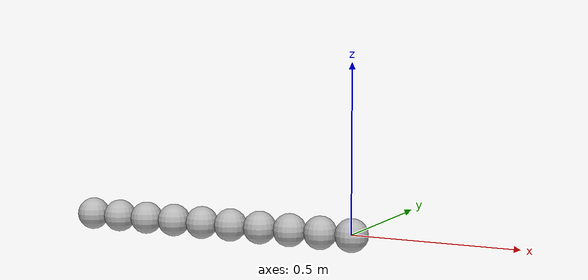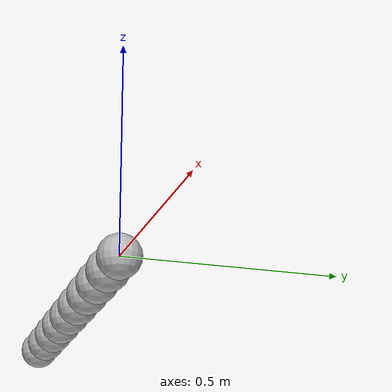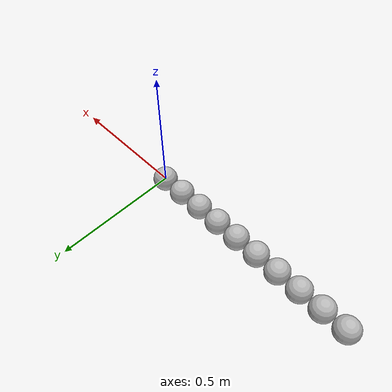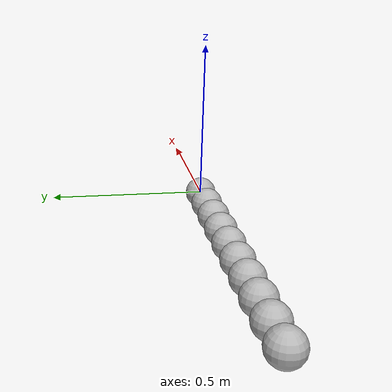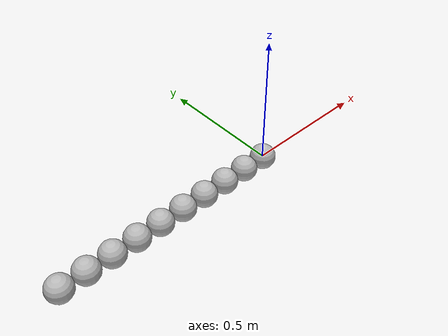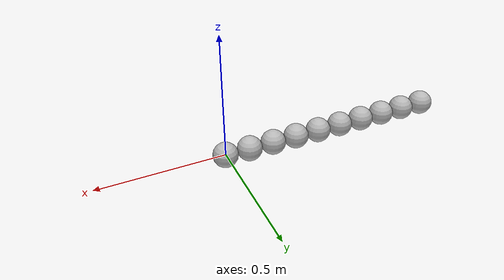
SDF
<?xml version='1.0' ?>
<!-- pybulletで使うときはballをsphericalをする-->
<!-- https://pybullet.org/Bullet/phpBB3/viewtopic.php?t=12687 -->
<!--  link同士の最短距離は0 -->
<sdf version="1.6">
  <model name="string_object">

    <self_collide>1</self_collide>

    <link name="link1">
      <collision name="collision1">
        <geometry>
          <sphere>
            <radius>0.05</radius>
          </sphere>
        </geometry>
      </collision>
      <visual name="visual1">
        <geometry>
          <sphere>
            <radius>0.05</radius>
          </sphere>
        </geometry>
      </visual>
      <inertial>
        <mass>0.1</mass>
        <inertia>
          <ixx>1.0</ixx>
          <ixy>0</ixy>
          <ixz>0</ixz>
          <iyy>1.0</iyy>
          <iyz>0</iyz>
          <izz>1.0</izz>
        </inertia>
      </inertial>
      <pose frame=''>0 0 0 0 0 0</pose>
    </link>

    <joint name="joint1" type="spherical">
      <parent>link1</parent>
      <child>link2</child>
      <pose frame=''>0.05 0 0 0 0 0</pose>
    </joint>

    <link name="link2">
      <collision name="collision2">
        <geometry>
          <sphere>
            <radius>0.05</radius>
          </sphere>
        </geometry>
      </collision>
      <visual name="visual2">
        <geometry>
          <sphere>
            <radius>0.05</radius>
          </sphere>
        </geometry>
      </visual>
      <inertial>
        <mass>0.1</mass>
        <inertia>
          <ixx>1.0</ixx>
          <ixy>0</ixy>
          <ixz>0</ixz>
          <iyy>1.0</iyy>
          <iyz>0</iyz>
          <izz>1.0</izz>
        </inertia>
      </inertial>
      <pose frame=''>-0.10 0 0 0 0 0</pose>
    </link>

    <joint name="joint2" type="spherical">
      <parent>link2</parent>
      <child>link3</child>
      <pose frame=''>0.05 0 0 0 0 0</pose>
    </joint>

    <link name="link3">
      <collision name="collision3">
        <geometry>
          <sphere>
            <radius>0.05</radius>
          </sphere>
        </geometry>
      </collision>
      <visual name="visual3">
        <geometry>
          <sphere>
            <radius>0.05</radius>
          </sphere>
        </geometry>
      </visual>
      <inertial>
        <mass>0.1</mass>
        <inertia>
          <ixx>1.0</ixx>
          <ixy>0</ixy>
          <ixz>0</ixz>
          <iyy>1.0</iyy>
          <iyz>0</iyz>
          <izz>1.0</izz>
        </inertia>
      </inertial>
      <pose frame=''>-0.20 0 0 0 0 0</pose>
    </link>

    <joint name="joint3" type="spherical">
      <parent>link3</parent>
      <child>link4</child>
      <pose frame=''>0.05 0 0 0 0 0</pose>
    </joint>

    <link name="link4">
      <collision name="collision4">
        <geometry>
          <sphere>
            <radius>0.05</radius>
          </sphere>
        </geometry>
      </collision>
      <visual name="visual4">
        <geometry>
          <sphere>
            <radius>0.05</radius>
          </sphere>
        </geometry>
      </visual>
      <inertial>
        <mass>0.1</mass>
        <inertia>
          <ixx>1.0</ixx>
          <ixy>0</ixy>
          <ixz>0</ixz>
          <iyy>1.0</iyy>
          <iyz>0</iyz>
          <izz>1.0</izz>
        </inertia>
      </inertial>
      <pose frame=''>-0.30 0 0 0 0 0</pose>
    </link>

    <joint name="joint4" type="spherical">
      <parent>link4</parent>
      <child>link5</child>
      <pose frame=''>0.05 0 0 0 0 0</pose>
    </joint>

    <link name="link5">
      <collision name="collision5">
        <geometry>
          <sphere>
            <radius>0.05</radius>
          </sphere>
        </geometry>
      </collision>
      <visual name="visual5">
        <geometry>
          <sphere>
            <radius>0.05</radius>
          </sphere>
        </geometry>
      </visual>
      <inertial>
        <mass>0.1</mass>
        <inertia>
          <ixx>1.0</ixx>
          <ixy>0</ixy>
          <ixz>0</ixz>
          <iyy>1.0</iyy>
          <iyz>0</iyz>
          <izz>1.0</izz>
        </inertia>
      </inertial>
      <pose frame=''>-0.40 0 0 0 0 0</pose>
    </link>

    <joint name="joint5" type="spherical">
      <parent>link5</parent>
      <child>link6</child>
      <pose frame=''>0.05 0 0 0 0 0</pose>
    </joint>

    <link name="link6">
      <collision name="collision6">
        <geometry>
          <sphere>
            <radius>0.05</radius>
          </sphere>
        </geometry>
      </collision>
      <visual name="visual6">
        <geometry>
          <sphere>
            <radius>0.05</radius>
          </sphere>
        </geometry>
      </visual>
      <inertial>
        <mass>0.1</mass>
        <inertia>
          <ixx>1.0</ixx>
          <ixy>0</ixy>
          <ixz>0</ixz>
          <iyy>1.0</iyy>
          <iyz>0</iyz>
          <izz>1.0</izz>
        </inertia>
      </inertial>
      <pose frame=''>-0.50 0 0 0 0 0</pose>
    </link>

    <joint name="joint6" type="spherical">
      <parent>link6</parent>
      <child>link7</child>
      <pose frame=''>0.05 0 0 0 0 0</pose>
    </joint>

    <link name="link7">
      <collision name="collision7">
        <geometry>
          <sphere>
            <radius>0.05</radius>
          </sphere>
        </geometry>
      </collision>
      <visual name="visual7">
        <geometry>
          <sphere>
            <radius>0.05</radius>
          </sphere>
        </geometry>
      </visual>
      <inertial>
        <mass>0.1</mass>
        <inertia>
          <ixx>1.0</ixx>
          <ixy>0</ixy>
          <ixz>0</ixz>
          <iyy>1.0</iyy>
          <iyz>0</iyz>
          <izz>1.0</izz>
        </inertia>
      </inertial>
      <pose frame=''>-0.60 0 0 0 0 0</pose>
    </link>

    <joint name="joint7" type="spherical">
      <parent>link7</parent>
      <child>link8</child>
      <pose frame=''>0.05 0 0 0 0 0</pose>
    </joint>

    <link name="link8">
      <collision name="collision8">
        <geometry>
          <sphere>
            <radius>0.05</radius>
          </sphere>
        </geometry>
      </collision>
      <visual name="visual8">
        <geometry>
          <sphere>
            <radius>0.05</radius>
          </sphere>
        </geometry>
      </visual>
      <inertial>
        <mass>0.1</mass>
        <inertia>
          <ixx>1.0</ixx>
          <ixy>0</ixy>
          <ixz>0</ixz>
          <iyy>1.0</iyy>
          <iyz>0</iyz>
          <izz>1.0</izz>
        </inertia>
      </inertial>
      <pose frame=''>-0.70 0 0 0 0 0</pose>
    </link>

    <joint name="joint8" type="spherical">
      <parent>link8</parent>
      <child>link9</child>
      <pose frame=''>0.05 0 0 0 0 0</pose>
    </joint>

    <link name="link9">
      <collision name="collision9">
        <geometry>
          <sphere>
            <radius>0.05</radius>
          </sphere>
        </geometry>
      </collision>
      <visual name="visual9">
        <geometry>
          <sphere>
            <radius>0.05</radius>
          </sphere>
        </geometry>
      </visual>
      <inertial>
        <mass>0.1</mass>
        <inertia>
          <ixx>1.0</ixx>
          <ixy>0</ixy>
          <ixz>0</ixz>
          <iyy>1.0</iyy>
          <iyz>0</iyz>
          <izz>1.0</izz>
        </inertia>
      </inertial>
      <pose frame=''>-0.80 0 0 0 0 0</pose>
    </link>

    <joint name="joint9" type="spherical">
      <parent>link9</parent>
      <child>link10</child>
      <pose frame=''>0.05 0 0 0 0 0</pose>
    </joint>

    <link name="link10">
      <collision name="collision10">
        <geometry>
          <sphere>
            <radius>0.05</radius>
          </sphere>
        </geometry>
      </collision>
      <visual name="visual10">
        <geometry>
          <sphere>
            <radius>0.05</radius>
          </sphere>
        </geometry>
      </visual>
      <inertial>
        <mass>0.1</mass>
        <inertia>
          <ixx>1.0</ixx>
          <ixy>0</ixy>
          <ixz>0</ixz>
          <iyy>1.0</iyy>
          <iyz>0</iyz>
          <izz>1.0</izz>
        </inertia>
      </inertial>
      <pose frame=''>-0.90 0 0 0 0 0</pose>
    </link>

  </model>
</sdf>
